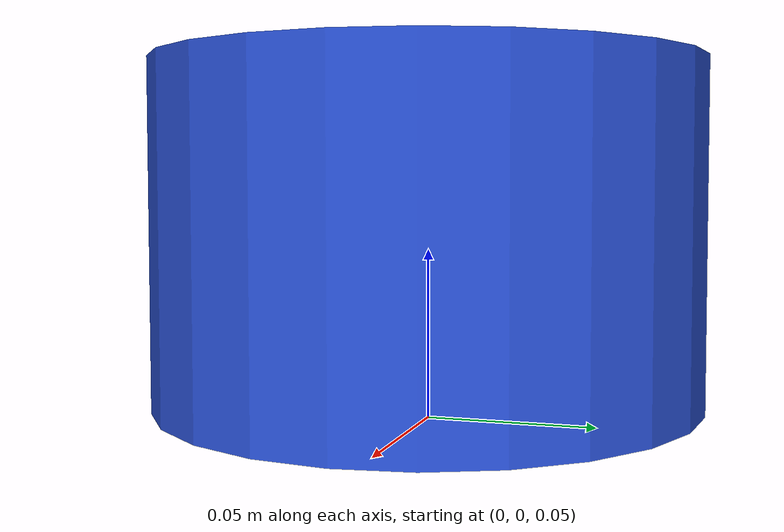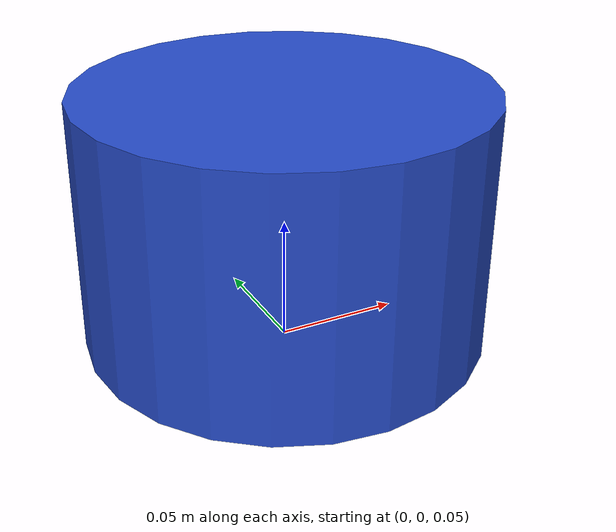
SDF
<?xml version="1.0" ?>
<sdf version='1.4'>
    <model name='plunger'>
        <pose>0 0 0.105 0 0 0</pose>
        <static>false</static>

        <link name='plunger_link'>

          <inertial>
              <mass>1.0</mass>
          </inertial>

          <collision name='plunger_collision'>
              <geometry>
                  <cylinder>
                        <radius>0.08</radius>
                        <length>0.10</length>
                  </cylinder>
              </geometry>
              <max_contacts>500</max_contacts>
              <surface>
                <contact>
                  <ode/>
                </contact>
                <bounce/>
                <friction>
                  <ode/>
                </friction>
              </surface>
          </collision>

          <visual name='plunger_visual'>
              <geometry>
                  <cylinder>
                      <radius>0.08</radius>
                      <length>0.10</length>
                  </cylinder>
              </geometry>
              <material>
                <script>
                  <uri>file://media/materials/scripts/gazebo.material</uri>
                  <name>Gazebo/Blue</name>
                </script>
              </material>
          </visual>

          <sensor name='plunger_sensor' type='contact'>
              <contact>
                  <collision>plunger_collision</collision>
              </contact>
          </sensor>

          <self_collide>0</self_collide>
          <kinematic>0</kinematic>
          <gravity>0</gravity>

        </link>

        <joint name='plunger_joint' type='prismatic'>
          <parent>world</parent>
          <child>plunger_link</child>
          <axis>
              <xyz>0 0 1</xyz>
              <limit>
                  <lower>-0.5</lower>
                  <upper>2</upper>
              </limit>
              <use_parent_model_frame>0</use_parent_model_frame>
          </axis>
          <physics>
             <provide_feedback>1</provide_feedback>
             <ode>
                <implicit_spring_damper>0</implicit_spring_damper>
             </ode>
          </physics>
        </joint>

        <plugin name='Plunger' filename='libPlunger.so'>
            <file_name>plunger</file_name>
            <rosNamespace>skinsim</rosNamespace>
            <updateRate>0</updateRate>
            <Kp>0.1</Kp>
            <Kd>0.0</Kd>
            <Kv>0.0</Kv>
            <JointPgain>0.5</JointPgain>
            <JointIgain>0.01</JointIgain>
            <JointDgain>0.0</JointDgain>
        </plugin>

    </model>
</sdf>
